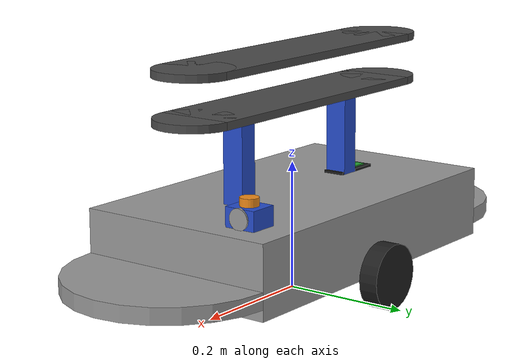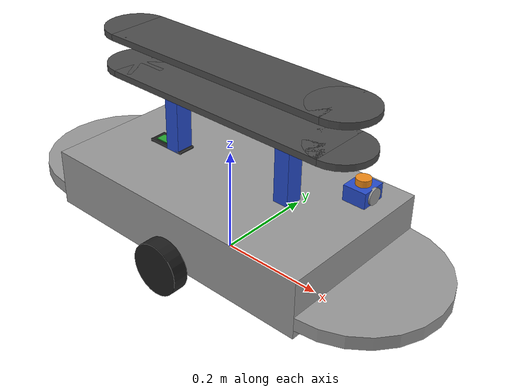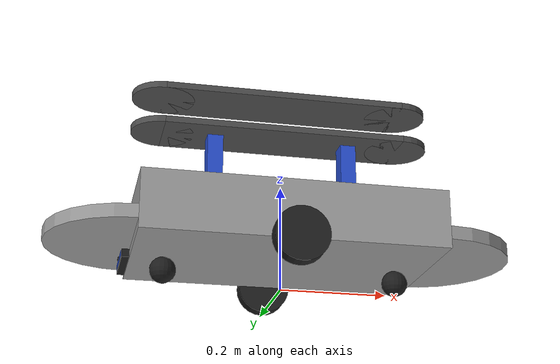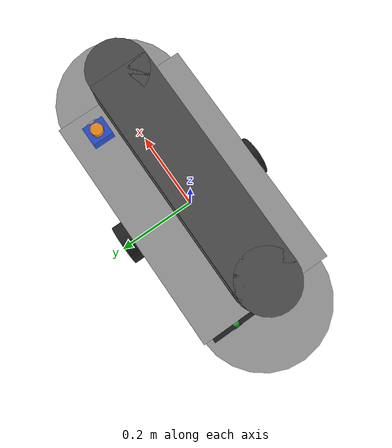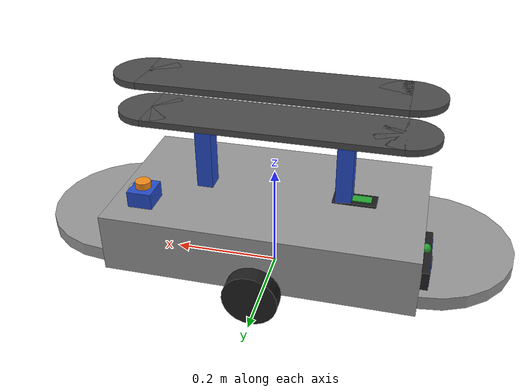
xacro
<?xml version="1.0"?>
<robot xmlns:xacro="http://www.ros.org/wiki/xacro">

    <xacro:include filename="inertial_macros.xacro"/>

    <!-- ==================== BASE FOOTPRINT ==================== -->
    <link name="base_footprint"/>

    <joint name="base_joint" type="fixed">
        <parent link="base_footprint"/>
        <child link="base_link"/>
        <origin xyz="0 0 0.05" rpy="0 0 0"/>
    </joint>

    <!-- ==================== CHASSIS PRINCIPAL (BASE LINK) ==================== -->
    <link name="base_link">
        <!-- Corps rectangulaire principal -->
        <visual>
            <origin xyz="0 0 0.055" rpy="0 0 0"/>
            <geometry>
                <box size="0.56 0.32 0.11"/>
            </geometry>
            <material name="chassis_grey"/>
        </visual>
        <collision>
            <origin xyz="0 0 0.055" rpy="0 0 0"/>
            <geometry>
                <box size="0.56 0.32 0.11"/>
            </geometry>
        </collision>

        <!-- Rebord / Pare-chocs avant arrondi (comme sur la Fig. 26) -->
        <visual>
            <origin xyz="0.28 0 0.03" rpy="0 0 0"/>
            <geometry>
                <cylinder radius="0.16" length="0.025"/>
            </geometry>
            <material name="chassis_grey"/>
        </visual>
        <collision>
            <origin xyz="0.28 0 0.03" rpy="0 0 0"/>
            <geometry>
                <cylinder radius="0.16" length="0.025"/>
            </geometry>
        </collision>

        <!-- Rebord / Pare-chocs arrière arrondi (comme sur la Fig. 26) -->
        <visual>
            <origin xyz="-0.28 0 0.03" rpy="0 0 0"/>
            <geometry>
                <cylinder radius="0.16" length="0.025"/>
            </geometry>
            <material name="chassis_grey"/>
        </visual>
        <collision>
            <origin xyz="-0.28 0 0.03" rpy="0 0 0"/>
            <geometry>
                <cylinder radius="0.16" length="0.025"/>
            </geometry>
        </collision>

        <!-- ==================== ZONE DE RECHARGE EMBARQUÉE (INTERFACE COMPATIBLE MiR CHARGE) ==================== -->
        <!-- Boîtier récepteur de recharge automatique arrière (Centré sur les broches du MiR Charge) -->
        <visual name="charging_interface_housing">
            <origin xyz="-0.285 0.08 0.04" rpy="0 0 0"/>
            <geometry>
                <box size="0.018 0.12 0.075"/>
            </geometry>
            <material name="charging_pad_black"/>
        </visual>

        <!-- Rainure de guidage en V / Chanfrein de centrage mécanique -->
        <visual name="charging_guide_funnel">
            <origin xyz="-0.292 0.08 0.04" rpy="0 0 0"/>
            <geometry>
                <box size="0.006 0.10 0.065"/>
            </geometry>
            <material name="accent_blue"/>
        </visual>

        <!-- Plot récepteur femelle Supérieur (Liaison broche 24V DC + du MiR Charge) -->
        <visual name="charging_contact_upper">
            <origin xyz="-0.293 0.08 0.055" rpy="0 1.5708 0"/>
            <geometry>
                <cylinder radius="0.012" length="0.008"/>
            </geometry>
            <material name="charging_copper"/>
        </visual>

        <!-- Plot récepteur femelle Inférieur (Liaison broche Masse GND - du MiR Charge) -->
        <visual name="charging_contact_lower">
            <origin xyz="-0.293 0.08 0.025" rpy="0 1.5708 0"/>
            <geometry>
                <cylinder radius="0.012" length="0.008"/>
            </geometry>
            <material name="charging_copper"/>
        </visual>

        <!-- Voyant LED d'état de charge de la batterie (Vert fixe = 100% / Prêt) -->
        <visual name="charging_status_led">
            <origin xyz="-0.285 0.08 0.085" rpy="0 0 0"/>
            <geometry>
                <sphere radius="0.008"/>
            </geometry>
            <material name="charging_green"/>
        </visual>

        <!-- Jauge visuelle de batterie embarquée (Afficheur LED 5 barres sur capot supérieur) -->
        <visual name="battery_gauge_display">
            <origin xyz="-0.15 0 0.112" rpy="0 0 0"/>
            <geometry>
                <box size="0.08 0.035 0.004"/>
            </geometry>
            <material name="charging_pad_black"/>
        </visual>
        <visual name="battery_gauge_leds">
            <origin xyz="-0.15 0 0.115" rpy="0 0 0"/>
            <geometry>
                <box size="0.06 0.02 0.002"/>
            </geometry>
            <material name="charging_green"/>
        </visual>

        <!-- Plaque de contact de charge inférieure (Option recharge par le sol) -->
        <visual name="charging_ground_contact_pad">
            <origin xyz="0 0 0.005" rpy="0 0 0"/>
            <geometry>
                <box size="0.14 0.18 0.003"/>
            </geometry>
            <material name="charging_copper"/>
        </visual>

        <!-- ==================== MODULE D'AVERTISSEUR SONORE & ALARME (SOUND ALERT SENSOR/ACTUATOR) ==================== -->
        <!-- Boîtier de l'avertisseur sonore industriel (Monté sur le plateau avant) -->
        <visual name="sound_alert_module_base">
            <origin xyz="0.22 0.09 0.125" rpy="0 0 0"/>
            <geometry>
                <box size="0.045 0.05 0.03"/>
            </geometry>
            <material name="accent_blue"/>
        </visual>
        <!-- Grille du haut-parleur / Transducteur piézoélectrique d'alerte -->
        <visual name="sound_alert_speaker_grill">
            <origin xyz="0.243 0.09 0.125" rpy="0 1.5708 0"/>
            <geometry>
                <cylinder radius="0.016" length="0.005"/>
            </geometry>
            <material name="chassis_grey"/>
        </visual>
        <!-- Balise lumineuse / Flash LED d'avertisseur sonore (Orange ambre) -->
        <visual name="sound_alert_warning_beacon">
            <origin xyz="0.22 0.09 0.145" rpy="0 0 0"/>
            <geometry>
                <cylinder radius="0.014" length="0.015"/>
            </geometry>
            <material name="safety_orange"/>
        </visual>

        <!-- Pilier vertical Avant -->
        <visual>
            <origin xyz="0.13 0 0.18" rpy="0 0 0"/>
            <geometry>
                <box size="0.03 0.035 0.14"/>
            </geometry>
            <material name="accent_blue"/>
        </visual>
        <collision>
            <origin xyz="0.13 0 0.18" rpy="0 0 0"/>
            <geometry>
                <box size="0.03 0.035 0.14"/>
            </geometry>
        </collision>

        <!-- Pilier vertical Arrière -->
        <visual>
            <origin xyz="-0.13 0 0.18" rpy="0 0 0"/>
            <geometry>
                <box size="0.03 0.035 0.14"/>
            </geometry>
            <material name="accent_blue"/>
        </visual>
        <collision>
            <origin xyz="-0.13 0 0.18" rpy="0 0 0"/>
            <geometry>
                <box size="0.03 0.035 0.14"/>
            </geometry>
        </collision>

        <!-- Plateau Inférieur Support PCB (Shelf 1) -->
        <visual>
            <origin xyz="0 0 0.25" rpy="0 0 0"/>
            <geometry>
                <box size="0.46 0.12 0.012"/>
            </geometry>
            <material name="rack_metal"/>
        </visual>
        <collision>
            <origin xyz="0 0 0.25" rpy="0 0 0"/>
            <geometry>
                <box size="0.46 0.12 0.012"/>
            </geometry>
        </collision>

        <!-- Extrémités arrondies Plateau 1 -->
        <visual>
            <origin xyz="0.23 0 0.25" rpy="0 0 0"/>
            <geometry>
                <cylinder radius="0.06" length="0.012"/>
            </geometry>
            <material name="rack_metal"/>
        </visual>
        <visual>
            <origin xyz="-0.23 0 0.25" rpy="0 0 0"/>
            <geometry>
                <cylinder radius="0.06" length="0.012"/>
            </geometry>
            <material name="rack_metal"/>
        </visual>

        <!-- Plateau Supérieur Support PCB (Shelf 2) -->
        <visual>
            <origin xyz="0 0 0.32" rpy="0 0 0"/>
            <geometry>
                <box size="0.46 0.12 0.012"/>
            </geometry>
            <material name="rack_metal"/>
        </visual>
        <collision>
            <origin xyz="0 0 0.32" rpy="0 0 0"/>
            <geometry>
                <box size="0.46 0.12 0.012"/>
            </geometry>
        </collision>

        <!-- Extrémités arrondies Plateau 2 -->
        <visual>
            <origin xyz="0.23 0 0.32" rpy="0 0 0"/>
            <geometry>
                <cylinder radius="0.06" length="0.012"/>
            </geometry>
            <material name="rack_metal"/>
        </visual>
        <visual>
            <origin xyz="-0.23 0 0.32" rpy="0 0 0"/>
            <geometry>
                <cylinder radius="0.06" length="0.012"/>
            </geometry>
            <material name="rack_metal"/>
        </visual>

        <xacro:inertial_box mass="8.5" x="0.56" y="0.32" z="0.33">
            <origin xyz="0 0 0.10" rpy="0 0 0"/>
        </xacro:inertial_box>
    </link>

    <gazebo reference="base_link">
        <material>Gazebo/DarkGrey</material>
    </gazebo>

    <!-- ==================== ROUE MOTRICE GAUCHE ==================== -->
    <joint name="left_wheel_joint" type="continuous">
        <parent link="base_link"/>
        <child link="left_wheel_link"/>
        <origin xyz="0 0.175 0" rpy="-${pi/2} 0 0"/>
        <axis xyz="0 0 1"/>
    </joint>

    <link name="left_wheel_link">
        <visual>
            <geometry>
                <cylinder radius="0.05" length="0.03"/>
            </geometry>
            <material name="wheel_black"/>
        </visual>
        <collision>
            <geometry>
                <cylinder radius="0.05" length="0.03"/>
            </geometry>
        </collision>
        <xacro:inertial_cylinder mass="0.45" length="0.03" radius="0.05">
            <origin xyz="0 0 0" rpy="0 0 0"/>
        </xacro:inertial_cylinder>
    </link>

    <gazebo reference="left_wheel_link">
        <material>Gazebo/FlatBlack</material>
        <mu1>1.2</mu1>
        <mu2>1.2</mu2>
        <fdir1>1 0 0</fdir1>
        <kp>1000000.0</kp>
        <kd>1.0</kd>
        <minDepth>0.001</minDepth>
    </gazebo>

    <!-- ==================== ROUE MOTRICE DROITE ==================== -->
    <joint name="right_wheel_joint" type="continuous">
        <parent link="base_link"/>
        <child link="right_wheel_link"/>
        <origin xyz="0 -0.175 0" rpy="${pi/2} 0 0"/>
        <axis xyz="0 0 -1"/>
    </joint>

    <link name="right_wheel_link">
        <visual>
            <geometry>
                <cylinder radius="0.05" length="0.03"/>
            </geometry>
            <material name="wheel_black"/>
        </visual>
        <collision>
            <geometry>
                <cylinder radius="0.05" length="0.03"/>
            </geometry>
        </collision>
        <xacro:inertial_cylinder mass="0.45" length="0.03" radius="0.05">
            <origin xyz="0 0 0" rpy="0 0 0"/>
        </xacro:inertial_cylinder>
    </link>

    <gazebo reference="right_wheel_link">
        <material>Gazebo/FlatBlack</material>
        <mu1>1.2</mu1>
        <mu2>1.2</mu2>
        <fdir1>1 0 0</fdir1>
        <kp>1000000.0</kp>
        <kd>1.0</kd>
        <minDepth>0.001</minDepth>
    </gazebo>

    <!-- ==================== ROUE LIBRE AVANT (CASTER) ==================== -->
    <joint name="front_caster_joint" type="fixed">
        <parent link="base_link"/>
        <child link="front_caster_link"/>
        <origin xyz="0.22 0 -0.025"/>
    </joint>

    <link name="front_caster_link">
        <visual>
            <geometry>
                <sphere radius="0.0245"/>
            </geometry>
            <material name="wheel_black"/>
        </visual>
        <collision>
            <geometry>
                <sphere radius="0.0245"/>
            </geometry>
        </collision>
        <xacro:inertial_sphere mass="0.20" radius="0.0245">
            <origin xyz="0 0 0" rpy="0 0 0"/>
        </xacro:inertial_sphere>
    </link>

    <gazebo reference="front_caster_link">
        <material>Gazebo/FlatBlack</material>
        <mu1>0.0001</mu1>
        <mu2>0.0001</mu2>
        <kp>100000.0</kp>
        <kd>1.0</kd>
        <minDepth>0.001</minDepth>
    </gazebo>

    <!-- ==================== ROUE LIBRE ARRIÈRE (CASTER) ==================== -->
    <joint name="rear_caster_joint" type="fixed">
        <parent link="base_link"/>
        <child link="rear_caster_link"/>
        <origin xyz="-0.22 0 -0.025"/>
    </joint>

    <link name="rear_caster_link">
        <visual>
            <geometry>
                <sphere radius="0.0245"/>
            </geometry>
            <material name="wheel_black"/>
        </visual>
        <collision>
            <geometry>
                <sphere radius="0.0245"/>
            </geometry>
        </collision>
        <xacro:inertial_sphere mass="0.20" radius="0.0245">
            <origin xyz="0 0 0" rpy="0 0 0"/>
        </xacro:inertial_sphere>
    </link>

    <gazebo reference="rear_caster_link">
        <material>Gazebo/FlatBlack</material>
        <mu1>0.0001</mu1>
        <mu2>0.0001</mu2>
        <kp>100000.0</kp>
        <kd>1.0</kd>
        <minDepth>0.001</minDepth>
    </gazebo>

</robot>

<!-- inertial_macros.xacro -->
<robot xmlns:xacro="http://www.ros.org/wiki/xacro">

    <!-- Macro d'inertie pour un parallélépipède (Box) -->
    <xacro:macro name="inertial_box" params="mass x y z *origin">
        <inertial>
            <xacro:insert_block name="origin"/>
            <mass value="${mass}"/>
            <inertia ixx="${(1/12) * mass * (y*y + z*z)}" ixy="0.0" ixz="0.0"
                     iyy="${(1/12) * mass * (x*x + z*z)}" iyz="0.0"
                     izz="${(1/12) * mass * (x*x + y*y)}"/>
        </inertial>
    </xacro:macro>

    <!-- Macro d'inertie pour un cylindre -->
    <xacro:macro name="inertial_cylinder" params="mass length radius *origin">
        <inertial>
            <xacro:insert_block name="origin"/>
            <mass value="${mass}"/>
            <inertia ixx="${(1/12) * mass * (3*radius*radius + length*length)}" ixy="0.0" ixz="0.0"
                     iyy="${(1/12) * mass * (3*radius*radius + length*length)}" iyz="0.0"
                     izz="${(1/2) * mass * (radius*radius)}"/>
        </inertial>
    </xacro:macro>

    <!-- Macro d'inertie pour une sphère -->
    <xacro:macro name="inertial_sphere" params="mass radius *origin">
        <inertial>
            <xacro:insert_block name="origin"/>
            <mass value="${mass}"/>
            <inertia ixx="${(2/5) * mass * (radius*radius)}" ixy="0.0" ixz="0.0"
                     iyy="${(2/5) * mass * (radius*radius)}" iyz="0.0"
                     izz="${(2/5) * mass * (radius*radius)}"/>
        </inertial>
    </xacro:macro>

</robot>
